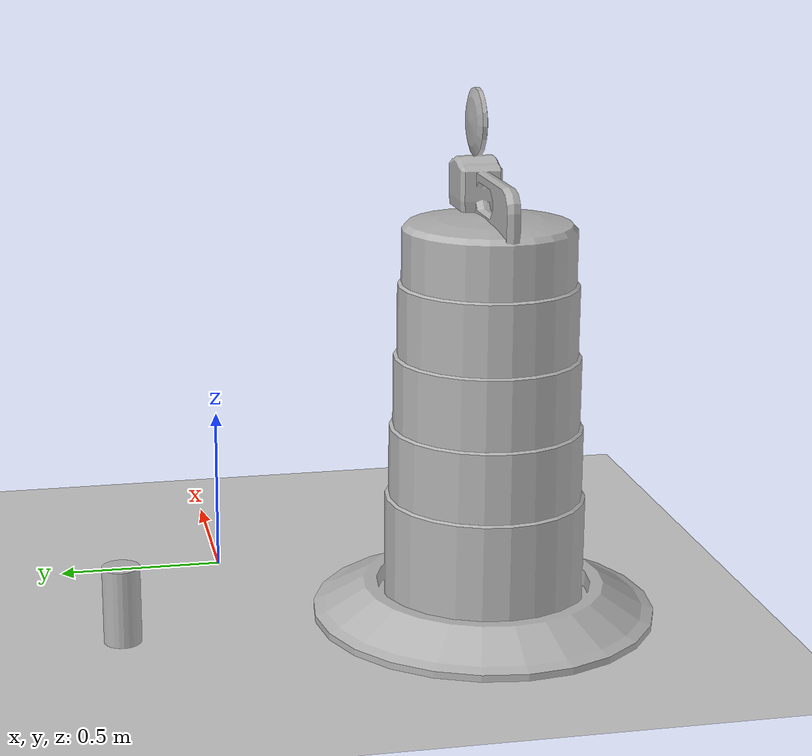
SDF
<sdf version="1.6">
 <world name="default">
  <model name="ground_plane">
   <static>1</static>
   <link name="link">
    <collision name="collision">
     <geometry><plane><normal>0 0 1</normal><size>100 100</size></plane></geometry>
     <surface>
      <contact><collide_bitmask>65535</collide_bitmask></contact>
      <friction><ode><mu>100</mu><mu2>50</mu2></ode></friction>
     </surface>
    </collision>
    <visual name="visual">
     <cast_shadows>0</cast_shadows>
     <geometry><plane><normal>0 0 1</normal><size>100 100</size></plane></geometry>
     <material>
      <script><uri>file://media/materials/scripts/gazebo.material</uri><name>Gazebo/Grey</name></script>
     </material>
    </visual>
   </link>
  </model>
  <model name="Construction Barrel">
   <link name="link">
    <inertial>
     <pose>0 0 0.4 0 -0 0</pose>
     <mass>500</mass>
     <inertia><ixx>51.2096</ixx><iyy>51.2096</iyy><izz>25</izz><ixy>0</ixy><ixz>0</ixz><iyz>0</iyz></inertia>
    </inertial>
    <collision name="collision">
     <geometry><mesh><uri>model://construction_barrel/meshes/construction_barrel.dae</uri></mesh></geometry>
    </collision>
    <visual name="visual">
     <geometry><mesh><uri>model://construction_barrel/meshes/construction_barrel.dae</uri></mesh></geometry>
    </visual>
   </link>
   <pose>-0.528386 -0.731933 0 0 -0 0</pose>
  </model>
  <model name="beer">
   <link name="link">
    <pose>0 0 0.115 0 -0 0</pose>
    <inertial>
     <mass>0.39</mass>
     <inertia><ixx>0.00058</ixx><ixy>0</ixy><ixz>0</ixz><iyy>0.00058</iyy><iyz>0</iyz><izz>0.00019</izz></inertia>
    </inertial>
    <collision name="collision">
     <geometry><cylinder><radius>0.055</radius><length>0.23</length></cylinder></geometry>
    </collision>
    <visual name="visual">
     <geometry><cylinder><radius>0.055</radius><length>0.23</length></cylinder></geometry>
     <material>
      <script>
       <uri>model://beer/materials/scripts</uri>
       <uri>model://beer/materials/textures</uri>
       <name>Beer/Diffuse</name>
      </script>
     </material>
    </visual>
   </link>
   <pose>-0.555133 0.348313 0 0 -0 0</pose>
  </model>
 </world>
</sdf>
